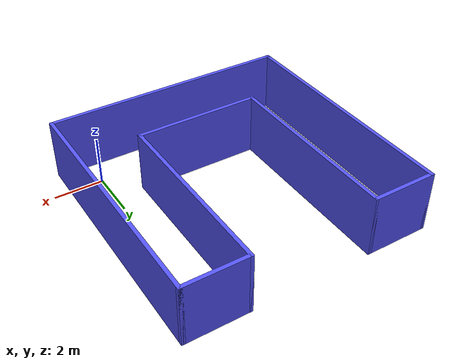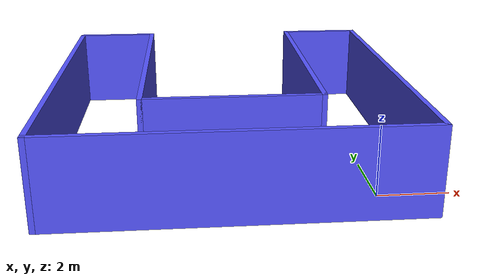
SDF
<?xml version='1.0'?>
<sdf version='1.6'>
  <model name='uworld'>
    <pose frame=''>-3.75 3.75 0 0 -0 0</pose>
    <link name='Wall_11'>
      <collision name='Wall_11_Collision'>
        <geometry>
          <box>
            <size>10.15 0.15 2.5</size>
          </box>
        </geometry>
        <pose frame=''>0 0 1.25 0 -0 0</pose>
      </collision>
      <visual name='Wall_11_Visual'>
        <pose frame=''>0 0 1.25 0 -0 0</pose>
        <geometry>
          <box>
            <size>10.15 0.15 2.5</size>
          </box>
        </geometry>
        <material>
          <script>
            <uri>file://media/materials/scripts/gazebo.material</uri>
            <name>Gazebo/Grey</name>
          </script>
          <ambient>0.333333 0.333333 1 1</ambient>
        </material>
        <meta>
          <layer>0</layer>
        </meta>
      </visual>
      <pose frame=''>5 0 0 0 -0 1.5708</pose>
    </link>
    <link name='Wall_13'>
      <collision name='Wall_13_Collision'>
        <geometry>
          <box>
            <size>10.15 0.15 2.5</size>
          </box>
        </geometry>
        <pose frame=''>0 0 1.25 0 -0 0</pose>
      </collision>
      <visual name='Wall_13_Visual'>
        <pose frame=''>0 0 1.25 0 -0 0</pose>
        <geometry>
          <box>
            <size>10.15 0.15 2.5</size>
          </box>
        </geometry>
        <material>
          <script>
            <uri>file://media/materials/scripts/gazebo.material</uri>
            <name>Gazebo/Grey</name>
          </script>
          <ambient>0.333333 0.333333 1 1</ambient>
        </material>
        <meta>
          <layer>0</layer>
        </meta>
      </visual>
      <pose frame=''>0 -5 0 0 -0 3.14159</pose>
    </link>
    <link name='Wall_14'>
      <collision name='Wall_14_Collision'>
        <geometry>
          <box>
            <size>10.15 0.15 2.5</size>
          </box>
        </geometry>
        <pose frame=''>0 0 1.25 0 -0 0</pose>
      </collision>
      <visual name='Wall_14_Visual'>
        <pose frame=''>0 0 1.25 0 -0 0</pose>
        <geometry>
          <box>
            <size>10.15 0.15 2.5</size>
          </box>
        </geometry>
        <material>
          <script>
            <uri>file://media/materials/scripts/gazebo.material</uri>
            <name>Gazebo/Grey</name>
          </script>
          <ambient>0.333333 0.333333 1 1</ambient>
        </material>
        <meta>
          <layer>0</layer>
        </meta>
      </visual>
      <pose frame=''>-5 0 0 0 -0 1.5708</pose>
    </link>
    <link name='Wall_15'>
      <collision name='Wall_15_Collision'>
        <geometry>
          <box>
            <size>2.65 0.15 2.5</size>
          </box>
        </geometry>
        <pose frame=''>0 0 1.25 0 -0 0</pose>
      </collision>
      <visual name='Wall_15_Visual'>
        <pose frame=''>0 0 1.25 0 -0 0</pose>
        <geometry>
          <box>
            <size>2.65 0.15 2.5</size>
          </box>
        </geometry>
        <material>
          <script>
            <uri>file://media/materials/scripts/gazebo.material</uri>
            <name>Gazebo/Grey</name>
          </script>
          <ambient>0.333333 0.333333 1 1</ambient>
        </material>
        <meta>
          <layer>0</layer>
        </meta>
      </visual>
      <pose frame=''>-3.75 5 0 0 -0 0</pose>
    </link>
    <link name='Wall_16'>
      <collision name='Wall_16_Collision'>
        <geometry>
          <box>
            <size>7.65 0.15 2.5</size>
          </box>
        </geometry>
        <pose frame=''>0 0 1.25 0 -0 0</pose>
      </collision>
      <visual name='Wall_16_Visual'>
        <pose frame=''>0 0 1.25 0 -0 0</pose>
        <geometry>
          <box>
            <size>7.65 0.15 2.5</size>
          </box>
        </geometry>
        <material>
          <script>
            <uri>file://media/materials/scripts/gazebo.material</uri>
            <name>Gazebo/Grey</name>
          </script>
          <ambient>0.333333 0.333333 1 1</ambient>
        </material>
        <meta>
          <layer>0</layer>
        </meta>
      </visual>
      <pose frame=''>-2.5 1.25 0 0 0 -1.5708</pose>
    </link>
    <link name='Wall_17'>
      <collision name='Wall_17_Collision'>
        <geometry>
          <box>
            <size>5.15 0.15 2.5</size>
          </box>
        </geometry>
        <pose frame=''>0 0 1.25 0 -0 0</pose>
      </collision>
      <visual name='Wall_17_Visual'>
        <pose frame=''>0 0 1.25 0 -0 0</pose>
        <geometry>
          <box>
            <size>5.15 0.15 2.5</size>
          </box>
        </geometry>
        <material>
          <script>
            <uri>file://media/materials/scripts/gazebo.material</uri>
            <name>Gazebo/Grey</name>
          </script>
          <ambient>0.333333 0.333333 1 1</ambient>
        </material>
        <meta>
          <layer>0</layer>
        </meta>
      </visual>
      <pose frame=''>0 -2.5 0 0 -0 0</pose>
    </link>
    <link name='Wall_18'>
      <collision name='Wall_18_Collision'>
        <geometry>
          <box>
            <size>7.65 0.15 2.5</size>
          </box>
        </geometry>
        <pose frame=''>0 0 1.25 0 -0 0</pose>
      </collision>
      <visual name='Wall_18_Visual'>
        <pose frame=''>0 0 1.25 0 -0 0</pose>
        <geometry>
          <box>
            <size>7.65 0.15 2.5</size>
          </box>
        </geometry>
        <material>
          <script>
            <uri>file://media/materials/scripts/gazebo.material</uri>
            <name>Gazebo/Grey</name>
          </script>
          <ambient>0.333333 0.333333 1 1</ambient>
        </material>
        <meta>
          <layer>0</layer>
        </meta>
      </visual>
      <pose frame=''>2.5 1.25 0 0 -0 1.5708</pose>
    </link>
    <link name='Wall_20'>
      <collision name='Wall_20_Collision'>
        <geometry>
          <box>
            <size>2.65 0.15 2.5</size>
          </box>
        </geometry>
        <pose frame=''>0 0 1.25 0 -0 0</pose>
      </collision>
      <visual name='Wall_20_Visual'>
        <pose frame=''>0 0 1.25 0 -0 0</pose>
        <geometry>
          <box>
            <size>2.65 0.15 2.5</size>
          </box>
        </geometry>
        <material>
          <script>
            <uri>file://media/materials/scripts/gazebo.material</uri>
            <name>Gazebo/Grey</name>
          </script>
          <ambient>0.333333 0.333333 1 1</ambient>
        </material>
        <meta>
          <layer>0</layer>
        </meta>
      </visual>
      <pose frame=''>3.75 5 0 0 -0 0</pose>
    </link>
    <static>1</static>
  </model>
</sdf>
